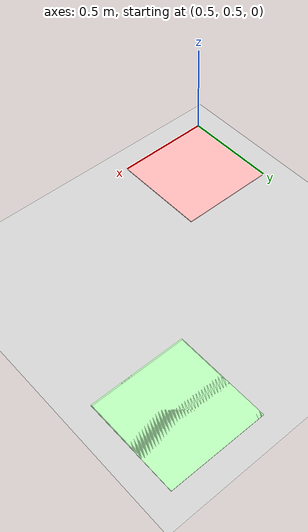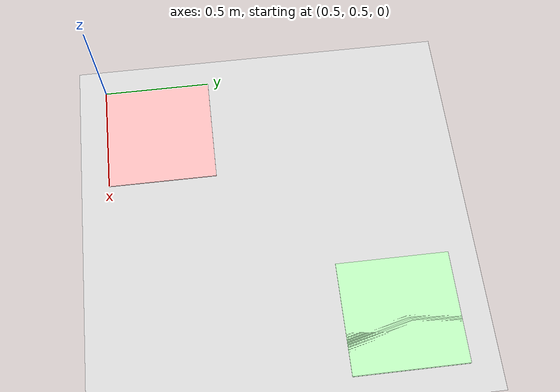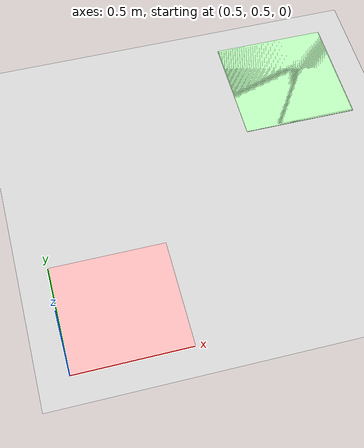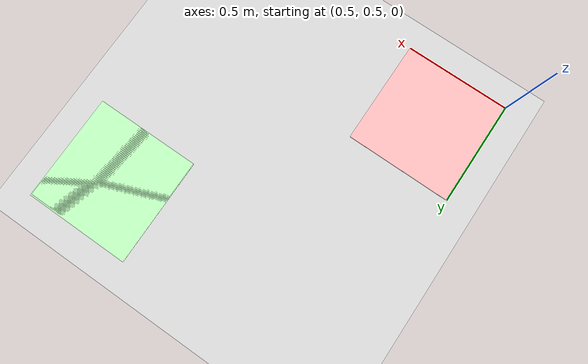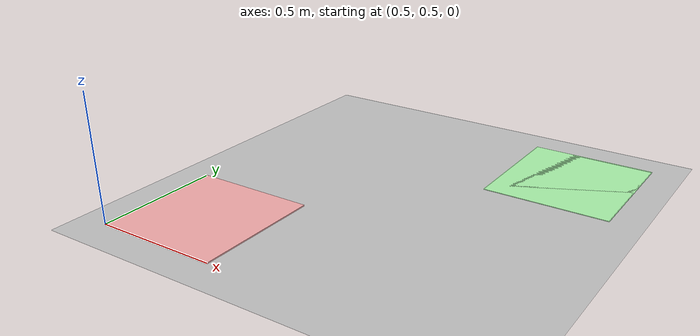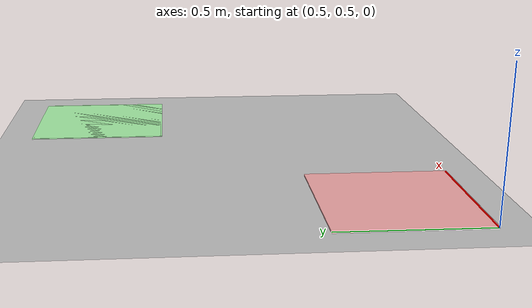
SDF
<sdf version="1.6">
 <world name="default">
  <scene><ambient>0.4 0.4 0.4 1</ambient><background>0.7 0.7 0.7 1</background><shadows>1</shadows></scene>
  <light name="sun" type="directional">
   <pose>0 0 10 0 -0 0</pose>
   <diffuse>0.8 0.8 0.8 1</diffuse>
   <specular>0.1 0.1 0.1 1</specular>
   <attenuation>
    <range>1000</range>
    <constant>0.9</constant>
    <linear>0.01</linear>
    <quadratic>0.001</quadratic>
   </attenuation>
   <direction>-0.5 0.5 -1</direction>
  </light>
  <model name="ground_plane">
   <static>1</static>
   <link name="link">
    <collision name="collision">
     <geometry><plane><normal>0 0 1</normal><size>100 100</size></plane></geometry>
     <surface><friction><ode><mu>100</mu><mu2>50</mu2></ode></friction></surface>
    </collision>
    <visual name="visual">
     <cast_shadows>0</cast_shadows>
     <geometry><plane><normal>0 0 1</normal><size>100 100</size></plane></geometry>
     <material>
      <script><uri>file://media/materials/scripts/gazebo.material</uri><name>Gazebo/Grey</name></script>
     </material>
    </visual>
   </link>
  </model>
  <physics name="default_physics" default="0" type="ode">
   <real_time_update_rate>1000</real_time_update_rate>
   <max_step_size>0.001</max_step_size>
   <real_time_factor>1</real_time_factor>
   <ode>
    <solver>
     <type>quick</type>
     <iters>150</iters>
     <precon_iters>0</precon_iters>
     <sor>1.4</sor>
     <use_dynamic_moi_rescaling>1</use_dynamic_moi_rescaling>
    </solver>
    <constraints>
     <cfm>1e-05</cfm>
     <erp>0.2</erp>
     <contact_max_correcting_vel>2000</contact_max_correcting_vel>
     <contact_surface_layer>0.01</contact_surface_layer>
    </constraints>
   </ode>
  </physics>
  <gravity>0 0 -9.8</gravity>
  <magnetic_field>6e-06 2.3e-05 -4.2e-05</magnetic_field>
  <atmosphere type="adiabatic"/>
  <spherical_coordinates>
   <surface_model>EARTH_WGS84</surface_model>
   <latitude_deg>0</latitude_deg>
   <longitude_deg>0</longitude_deg>
   <elevation>0</elevation>
   <heading_deg>0</heading_deg>
  </spherical_coordinates>
  <model name="Obstacle_3_0">
   <link name="link">
    <inertial>
     <mass>4.32813</mass>
     <inertia><ixx>2.19153</ixx><ixy>0</ixy><ixz>0</ixz><iyy>1.69171</iyy><iyz>0</iyz><izz>3.16188</izz></inertia>
    </inertial>
    <visual name="visual">
     <geometry><box><size>0.503574 0.503574 0.006027</size></box></geometry>
     <material>
      <script><name>Gazebo/Grey</name><uri>file://media/materials/scripts/gazebo.material</uri></script>
      <ambient>1 0.3 0.3 1</ambient>
      <diffuse>1 0.7 0.7 1</diffuse>
      <specular>1 0.01 0.01 1</specular>
      <emissive>1 0 0 1</emissive>
      <shader type="vertex"><normal_map>__default__</normal_map></shader>
     </material>
    </visual>
    <collision name="collision_0">
     <geometry><box><size>0.503574 0.503574 0.006027</size></box></geometry>
     <surface>
      <friction>
       <ode><mu>1</mu><mu2>1</mu2><fdir1>0 0 0</fdir1><slip1>0</slip1><slip2>0</slip2></ode>
       <torsional>
        <coefficient>1</coefficient>
        <patch_radius>0</patch_radius>
        <surface_radius>0</surface_radius>
        <use_patch_radius>1</use_patch_radius>
        <ode><slip>0</slip></ode>
       </torsional>
      </friction>
      <bounce><restitution_coefficient>0</restitution_coefficient><threshold>1e+06</threshold></bounce>
      <contact>
       <collide_without_contact>0</collide_without_contact>
       <collide_without_contact_bitmask>1</collide_without_contact_bitmask>
       <collide_bitmask>1</collide_bitmask>
       <ode>
        <soft_cfm>0</soft_cfm>
        <soft_erp>0.2</soft_erp>
        <kp>1e+13</kp>
        <kd>1</kd>
        <max_vel>0.01</max_vel>
        <min_depth>0</min_depth>
       </ode>
       <bullet>
        <split_impulse>1</split_impulse>
        <split_impulse_penetration_threshold>-0.01</split_impulse_penetration_threshold>
        <soft_cfm>0</soft_cfm>
        <soft_erp>0.2</soft_erp>
        <kp>1e+13</kp>
        <kd>1</kd>
       </bullet>
      </contact>
     </surface>
    </collision>
   </link>
   <static>0</static>
   <pose>0.75 0.75 0 0 -0 8e-06</pose>
  </model>
  <model name="Goal_2_0_0">
   <link name="link">
    <inertial>
     <mass>0.47429</mass>
     <inertia>
      <ixx>0.259721</ixx>
      <ixy>0</ixy>
      <ixz>0</ixz>
      <iyy>0.222745</iyy>
      <iyz>0</iyz>
      <izz>0.481984</izz>
     </inertia>
    </inertial>
    <visual name="ModelPreview_6::link::visual_2">
     <geometry><box><size>0.5 0.512906 0.002718</size></box></geometry>
     <material>
      <script><name>Gazebo/Grey</name><uri>file://media/materials/scripts/gazebo.material</uri></script>
      <ambient>0.3 1 0.3 1</ambient>
      <diffuse>0.7 1 0.7 1</diffuse>
      <specular>0.01 1 0.01 1</specular>
      <emissive>0 1 0 1</emissive>
      <shader type="vertex"><normal_map>__default__</normal_map></shader>
     </material>
    </visual>
    <visual name="ModelPreview_6::link::visual_1">
     <geometry><box><size>0.505653 0.512906 0.002718</size></box></geometry>
     <material>
      <script><name>Gazebo/Grey</name><uri>file://media/materials/scripts/gazebo.material</uri></script>
      <ambient>0.3 1 0.3 1</ambient>
      <diffuse>0.7 1 0.7 1</diffuse>
      <specular>0.01 1 0.01 1</specular>
      <emissive>0 1 0 1</emissive>
      <shader type="vertex"><normal_map>__default__</normal_map></shader>
     </material>
    </visual>
    <visual name="visual">
     <geometry><box><size>0.5 0.5 0.002718</size></box></geometry>
     <material>
      <script><name>Gazebo/Grey</name><uri>file://media/materials/scripts/gazebo.material</uri></script>
      <ambient>0.3 1 0.3 1</ambient>
      <diffuse>0.7 1 0.7 1</diffuse>
      <specular>0.01 1 0.01 1</specular>
      <emissive>0 1 0 1</emissive>
      <shader type="vertex"><normal_map>__default__</normal_map></shader>
     </material>
    </visual>
    <collision name="collision_0">
     <geometry><box><size>0.001 0.001 0.002718</size></box></geometry>
     <surface>
      <friction>
       <ode><mu>1</mu><mu2>1</mu2><fdir1>0 0 0</fdir1><slip1>0</slip1><slip2>0</slip2></ode>
       <torsional>
        <coefficient>1</coefficient>
        <patch_radius>0</patch_radius>
        <surface_radius>0</surface_radius>
        <use_patch_radius>1</use_patch_radius>
        <ode><slip>0</slip></ode>
       </torsional>
      </friction>
      <bounce><restitution_coefficient>0</restitution_coefficient><threshold>1e+06</threshold></bounce>
      <contact>
       <collide_without_contact>0</collide_without_contact>
       <collide_without_contact_bitmask>1</collide_without_contact_bitmask>
       <collide_bitmask>1</collide_bitmask>
       <ode>
        <soft_cfm>0</soft_cfm>
        <soft_erp>0.2</soft_erp>
        <kp>1e+13</kp>
        <kd>1</kd>
        <max_vel>0.01</max_vel>
        <min_depth>0</min_depth>
       </ode>
       <bullet>
        <split_impulse>1</split_impulse>
        <split_impulse_penetration_threshold>-0.01</split_impulse_penetration_threshold>
        <soft_cfm>0</soft_cfm>
        <soft_erp>0.2</soft_erp>
        <kp>1e+13</kp>
        <kd>1</kd>
       </bullet>
      </contact>
     </surface>
    </collision>
   </link>
   <static>0</static>
   <pose>1.75 1.75 0 0 -2e-06 0</pose>
  </model>
 </world>
</sdf>
